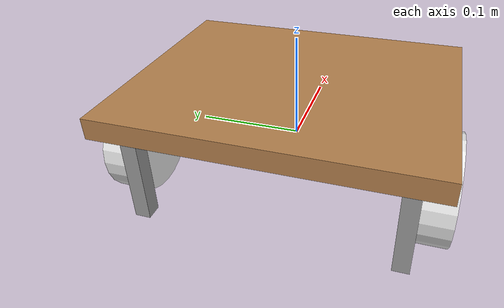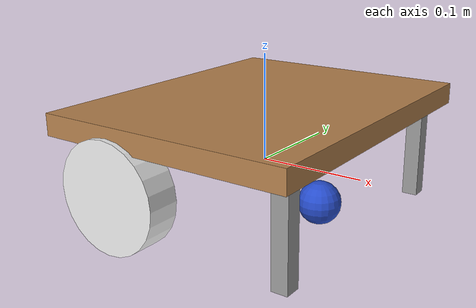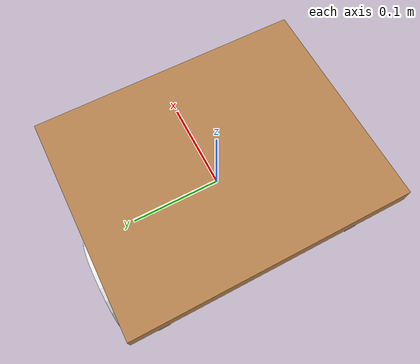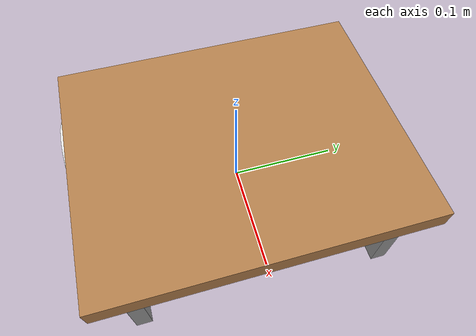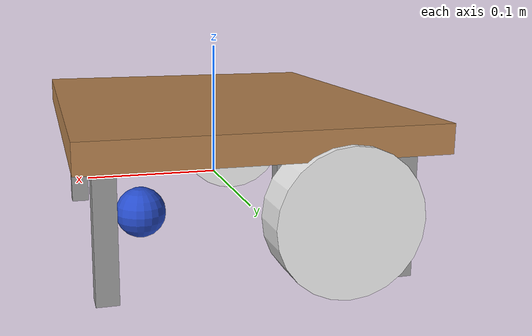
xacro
<?xml version="1.0" ?>
<robot xmlns:xacro="http://www.ros.org/wiki/xacro" name="demo_bot">
    <xacro:include filename="wheels.xacro" />

    <!-- Base Link -->
    <link name="base_link">
        <!-- Table top -->
        <visual name="table_top">
        <origin xyz="0 0 0.05" rpy="0 0 0"/>
        <geometry>
            <box size="0.24 0.3 0.02" />
        </geometry>
        <material name="wood"/>
        </visual>
        <!-- Table legs (ground is at z = -0.05) -->
        <visual name="leg_fl">
        <origin xyz="0.1 0.12 0" rpy="0 0 0"/>
        <geometry><box size="0.015 0.015 0.1" /></geometry>
        <material name="gray"/>
        </visual>
        <visual name="leg_fr">
        <origin xyz="0.1 -0.12 0" rpy="0 0 0"/>
        <geometry><box size="0.015 0.015 0.1" /></geometry>
        <material name="gray"/>
        </visual>
        <visual name="leg_rl">
        <origin xyz="-0.1 0.12 0" rpy="0 0 0"/>
        <geometry><box size="0.015 0.015 0.1" /></geometry>
        <material name="gray"/>
        </visual>
        <visual name="leg_rr">
        <origin xyz="-0.1 -0.12 0" rpy="0 0 0"/>
        <geometry><box size="0.015 0.015 0.1" /></geometry>
        <material name="gray"/>
        </visual>
        <collision>
        <origin xyz="0 0 0" rpy="0 0 0"/>
        <geometry>
            <!-- All dimensions in meters -->
            <box size="0.2 0.24 0.06" />
        </geometry>
        </collision>

        <xacro:inertial_box mass="3" x="0.2" y="0.24" z="0.06">
            <origin xyz="0 0 0" rpy="0 0 0"/>
        </xacro:inertial_box>
    </link>

    <!-- Left Wheel -->
    <xacro:wheel prefix="left" y="0.14" rpy="${pi/2} 0 0" axis="-1"/>
    <!-- Right Wheel -->
    <xacro:wheel prefix="right" y="-0.14" rpy="-${pi/2} 0 0" axis="1"/>

    <!-- Fixed Caster -->
    <joint name="caster_joint" type="fixed">
        <origin xyz="0.06 0 -0.03"/>
        <parent link="base_link"/>
        <child link="caster"/>
    </joint>

    <link name="caster">
        <visual>
        <origin xyz="0 0 0" rpy="0 0 0"/>
        <geometry>
            <!-- All dimensions in meters -->
            <sphere radius="0.02" />
        </geometry>
        <material name="blue"/>
        </visual>
        <collision>
        <origin xyz="0 0 0" rpy="0 0 0"/>
        <geometry>
            <sphere radius="0.02" />
        </geometry>
        </collision>
    </link>

    <gazebo reference="caster">
        <mu1 value="0"/>
        <mu2 value="0"/>
    </gazebo>
</robot>

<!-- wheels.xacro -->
<robot xmlns:xacro="http://www.ros.org/wiki/xacro" name="demo_bot">

<!-- Create a Macro for a Wheel -->
<xacro:macro name="wheel" params="prefix y rpy axis">

    <!-- Wheel Joint -->
    <joint name="${prefix}_wheel_joint" type="continuous">
        <parent link="base_link"/>
        <child link="${prefix}_wheel"/>
        <origin xyz="-0.05 ${y} 0" rpy="${rpy}"/>
        <axis xyz="0 0 ${axis}"/>
        <limit effort="0.5" velocity="10.0"/>
    </joint>

    <!-- Wheel Link -->
    <link name="${prefix}_wheel">
        <origin rpy="0 0 0" xyz="0 0 0"/>
        <visual>
            <geometry>
                <cylinder length="0.03" radius="0.05" />
            </geometry>
            <material name="white"/>
        </visual>
        <collision>
            <geometry>
                <sphere radius="0.05"/>
            </geometry>
        </collision>
        <xacro:inertial_cylinder mass="0.1" length="0.03" radius="0.05">
            <origin xyz="0 0 0" rpy="0 0 0"/>
        </xacro:inertial_cylinder>
    </link>

    <gazebo reference="${prefix}_wheel">
        <mu1 value="0.7"/>
        <mu2 value="0.5"/>
    </gazebo>

</xacro:macro>

</robot>
